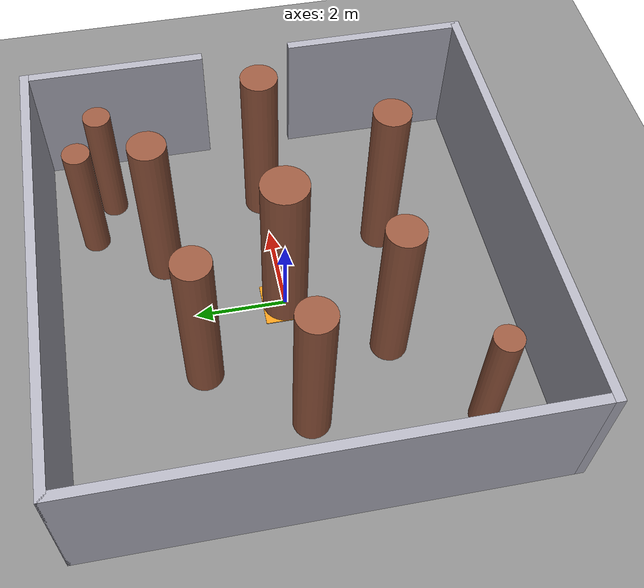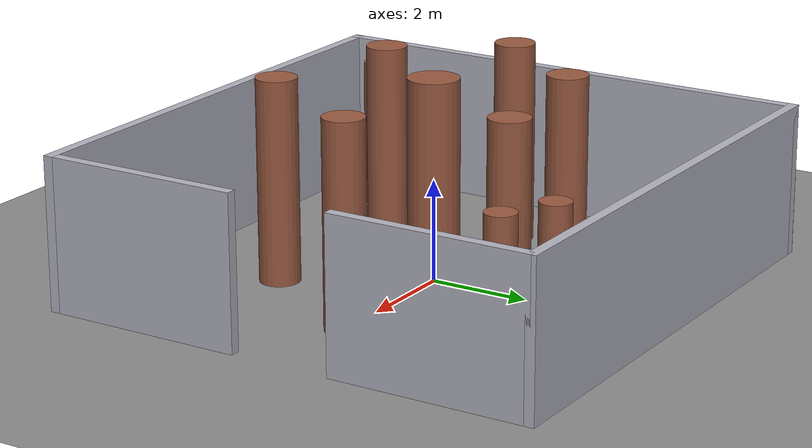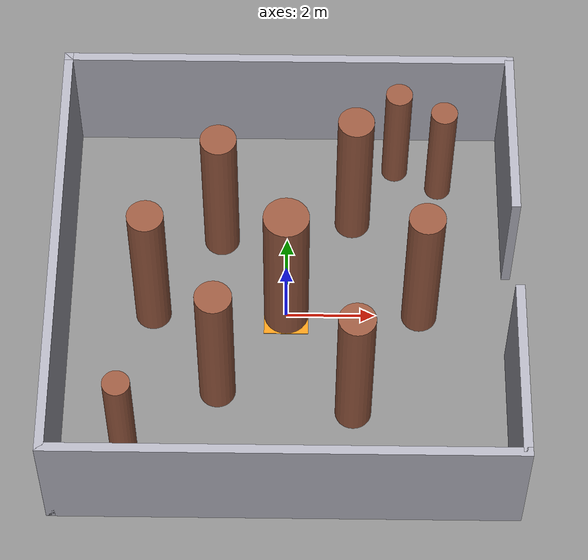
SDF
<?xml version="1.0" ?>
<sdf version="1.9">
  <world name="obstacle_course">

    <physics name="1ms" type="ignored">
      <max_step_size>0.001</max_step_size>
      <real_time_factor>1.0</real_time_factor>
    </physics>

    <plugin filename="gz-sim-physics-system"
            name="gz::sim::systems::Physics"/>
    <plugin filename="gz-sim-user-commands-system"
            name="gz::sim::systems::UserCommands"/>
    <plugin filename="gz-sim-scene-broadcaster-system"
            name="gz::sim::systems::SceneBroadcaster"/>
    <plugin filename="gz-sim-contact-system"
            name="gz::sim::systems::Contact"/>
    <plugin filename="gz-sim-imu-system"
            name="gz::sim::systems::Imu"/>
    <plugin filename="gz-sim-sensors-system"
            name="gz::sim::systems::Sensors">
      <render_engine>ogre2</render_engine>
    </plugin>

    <gravity>0 0 -9.8</gravity>
    <magnetic_field>6.0e-6 2.3e-5 -4.2e-5</magnetic_field>

    <scene>
      <ambient>0.8 0.8 0.8 1</ambient>
      <background>0.6 0.75 0.9 1</background>
      <shadows>true</shadows>
    </scene>

    <light type="directional" name="sun">
      <cast_shadows>true</cast_shadows>
      <pose>0 0 12 0 0 0</pose>
      <diffuse>0.9 0.9 0.9 1</diffuse>
      <specular>0.25 0.25 0.25 1</specular>
      <attenuation>
        <range>1000</range>
        <constant>0.9</constant>
        <linear>0.01</linear>
        <quadratic>0.001</quadratic>
      </attenuation>
      <direction>-0.4 0.3 -0.9</direction>
    </light>

    <model name="ground_plane">
      <static>true</static>
      <link name="link">
        <collision name="collision">
          <geometry>
            <plane>
              <normal>0 0 1</normal>
              <size>200 200</size>
            </plane>
          </geometry>
        </collision>
        <visual name="visual">
          <geometry>
            <plane>
              <normal>0 0 1</normal>
              <size>200 200</size>
            </plane>
          </geometry>
          <material>
            <ambient>0.45 0.45 0.45 1</ambient>
            <diffuse>0.55 0.55 0.55 1</diffuse>
            <specular>0.1 0.1 0.1 1</specular>
          </material>
        </visual>
      </link>
    </model>

    <!-- North wall: y = +5, full span -->
    <model name="wall_north">
      <static>true</static>
      <pose>0 5 1.5 0 0 0</pose>
      <link name="link">
        <collision name="collision">
          <geometry><box><size>10.2 0.2 3</size></box></geometry>
        </collision>
        <visual name="visual">
          <geometry><box><size>10.2 0.2 3</size></box></geometry>
          <material>
            <ambient>0.55 0.55 0.6 1</ambient>
            <diffuse>0.7 0.7 0.75 1</diffuse>
          </material>
        </visual>
      </link>
    </model>

    <!-- South wall: y = -5, full span -->
    <model name="wall_south">
      <static>true</static>
      <pose>0 -5 1.5 0 0 0</pose>
      <link name="link">
        <collision name="collision">
          <geometry><box><size>10.2 0.2 3</size></box></geometry>
        </collision>
        <visual name="visual">
          <geometry><box><size>10.2 0.2 3</size></box></geometry>
          <material>
            <ambient>0.55 0.55 0.6 1</ambient>
            <diffuse>0.7 0.7 0.75 1</diffuse>
          </material>
        </visual>
      </link>
    </model>

    <!-- West wall: x = -5, full span -->
    <model name="wall_west">
      <static>true</static>
      <pose>-5 0 1.5 0 0 0</pose>
      <link name="link">
        <collision name="collision">
          <geometry><box><size>0.2 10.2 3</size></box></geometry>
        </collision>
        <visual name="visual">
          <geometry><box><size>0.2 10.2 3</size></box></geometry>
          <material>
            <ambient>0.55 0.55 0.6 1</ambient>
            <diffuse>0.7 0.7 0.75 1</diffuse>
          </material>
        </visual>
      </link>
    </model>

    <!-- East wall, northern segment: x = +5, y from +1 to +5 -->
    <model name="wall_east_north">
      <static>true</static>
      <pose>5 3 1.5 0 0 0</pose>
      <link name="link">
        <collision name="collision">
          <geometry><box><size>0.2 4 3</size></box></geometry>
        </collision>
        <visual name="visual">
          <geometry><box><size>0.2 4 3</size></box></geometry>
          <material>
            <ambient>0.55 0.55 0.6 1</ambient>
            <diffuse>0.7 0.7 0.75 1</diffuse>
          </material>
        </visual>
      </link>
    </model>

    <!-- East wall, southern segment: x = +5, y from -5 to -1 -->
    <model name="wall_east_south">
      <static>true</static>
      <pose>5 -3 1.5 0 0 0</pose>
      <link name="link">
        <collision name="collision">
          <geometry><box><size>0.2 4 3</size></box></geometry>
        </collision>
        <visual name="visual">
          <geometry><box><size>0.2 4 3</size></box></geometry>
          <material>
            <ambient>0.55 0.55 0.6 1</ambient>
            <diffuse>0.7 0.7 0.75 1</diffuse>
          </material>
        </visual>
      </link>
    </model>

    <!-- Visual marker at the origin, so "home" is obvious in the camera view -->
    <model name="home_marker">
      <static>true</static>
      <pose>0 0 0.01 0 0 0</pose>
      <link name="link">
        <visual name="visual">
          <geometry><box><size>1.0 1.0 0.02</size></box></geometry>
          <material>
            <ambient>0.9 0.5 0.1 1</ambient>
            <diffuse>1.0 0.6 0.1 1</diffuse>
          </material>
        </visual>
      </link>
    </model>

    <model name="pillar_a">
      <static>true</static>
      <pose>-3.0 0.0 2.0 0 0 0</pose>
      <link name="link">
        <collision name="collision">
          <geometry><cylinder><radius>0.4</radius><length>4.0</length></cylinder></geometry>
        </collision>
        <visual name="visual">
          <geometry><cylinder><radius>0.4</radius><length>4.0</length></cylinder></geometry>
          <material>
            <ambient>0.35 0.2 0.15 1</ambient>
            <diffuse>0.6 0.35 0.25 1</diffuse>
          </material>
        </visual>
      </link>
    </model>
    <model name="pillar_b">
      <static>true</static>
      <pose>-1.5 2.0 2.0 0 0 0</pose>
      <link name="link">
        <collision name="collision">
          <geometry><cylinder><radius>0.4</radius><length>4.0</length></cylinder></geometry>
        </collision>
        <visual name="visual">
          <geometry><cylinder><radius>0.4</radius><length>4.0</length></cylinder></geometry>
          <material>
            <ambient>0.35 0.2 0.15 1</ambient>
            <diffuse>0.6 0.35 0.25 1</diffuse>
          </material>
        </visual>
      </link>
    </model>
    <model name="pillar_c">
      <static>true</static>
      <pose>-1.5 -2.0 2.0 0 0 0</pose>
      <link name="link">
        <collision name="collision">
          <geometry><cylinder><radius>0.4</radius><length>4.0</length></cylinder></geometry>
        </collision>
        <visual name="visual">
          <geometry><cylinder><radius>0.4</radius><length>4.0</length></cylinder></geometry>
          <material>
            <ambient>0.35 0.2 0.15 1</ambient>
            <diffuse>0.6 0.35 0.25 1</diffuse>
          </material>
        </visual>
      </link>
    </model>
    <model name="pillar_d">
      <static>true</static>
      <pose>0.0 0.0 2.0 0 0 0</pose>
      <link name="link">
        <collision name="collision">
          <geometry><cylinder><radius>0.5</radius><length>4.0</length></cylinder></geometry>
        </collision>
        <visual name="visual">
          <geometry><cylinder><radius>0.5</radius><length>4.0</length></cylinder></geometry>
          <material>
            <ambient>0.35 0.2 0.15 1</ambient>
            <diffuse>0.6 0.35 0.25 1</diffuse>
          </material>
        </visual>
      </link>
    </model>
    <model name="pillar_e">
      <static>true</static>
      <pose>1.5 2.5 2.0 0 0 0</pose>
      <link name="link">
        <collision name="collision">
          <geometry><cylinder><radius>0.4</radius><length>4.0</length></cylinder></geometry>
        </collision>
        <visual name="visual">
          <geometry><cylinder><radius>0.4</radius><length>4.0</length></cylinder></geometry>
          <material>
            <ambient>0.35 0.2 0.15 1</ambient>
            <diffuse>0.6 0.35 0.25 1</diffuse>
          </material>
        </visual>
      </link>
    </model>
    <model name="pillar_f">
      <static>true</static>
      <pose>1.5 -2.5 2.0 0 0 0</pose>
      <link name="link">
        <collision name="collision">
          <geometry><cylinder><radius>0.4</radius><length>4.0</length></cylinder></geometry>
        </collision>
        <visual name="visual">
          <geometry><cylinder><radius>0.4</radius><length>4.0</length></cylinder></geometry>
          <material>
            <ambient>0.35 0.2 0.15 1</ambient>
            <diffuse>0.6 0.35 0.25 1</diffuse>
          </material>
        </visual>
      </link>
    </model>
    <model name="pillar_g">
      <static>true</static>
      <pose>3.0 0.0 2.0 0 0 0</pose>
      <link name="link">
        <collision name="collision">
          <geometry><cylinder><radius>0.4</radius><length>4.0</length></cylinder></geometry>
        </collision>
        <visual name="visual">
          <geometry><cylinder><radius>0.4</radius><length>4.0</length></cylinder></geometry>
          <material>
            <ambient>0.35 0.2 0.15 1</ambient>
            <diffuse>0.6 0.35 0.25 1</diffuse>
          </material>
        </visual>
      </link>
    </model>
    <model name="pillar_h">
      <static>true</static>
      <pose>3.5 3.5 1.5 0 0 0</pose>
      <link name="link">
        <collision name="collision">
          <geometry><cylinder><radius>0.3</radius><length>3.0</length></cylinder></geometry>
        </collision>
        <visual name="visual">
          <geometry><cylinder><radius>0.3</radius><length>3.0</length></cylinder></geometry>
          <material>
            <ambient>0.35 0.2 0.15 1</ambient>
            <diffuse>0.6 0.35 0.25 1</diffuse>
          </material>
        </visual>
      </link>
    </model>
    <model name="pillar_i">
      <static>true</static>
      <pose>2.5 4.0 1.5 0 0 0</pose>
      <link name="link">
        <collision name="collision">
          <geometry><cylinder><radius>0.3</radius><length>3.0</length></cylinder></geometry>
        </collision>
        <visual name="visual">
          <geometry><cylinder><radius>0.3</radius><length>3.0</length></cylinder></geometry>
          <material>
            <ambient>0.35 0.2 0.15 1</ambient>
            <diffuse>0.6 0.35 0.25 1</diffuse>
          </material>
        </visual>
      </link>
    </model>
    <model name="pillar_j">
      <static>true</static>
      <pose>-3.5 -3.5 1.5 0 0 0</pose>
      <link name="link">
        <collision name="collision">
          <geometry><cylinder><radius>0.3</radius><length>3.0</length></cylinder></geometry>
        </collision>
        <visual name="visual">
          <geometry><cylinder><radius>0.3</radius><length>3.0</length></cylinder></geometry>
          <material>
            <ambient>0.35 0.2 0.15 1</ambient>
            <diffuse>0.6 0.35 0.25 1</diffuse>
          </material>
        </visual>
      </link>
    </model>

  </world>
</sdf>
